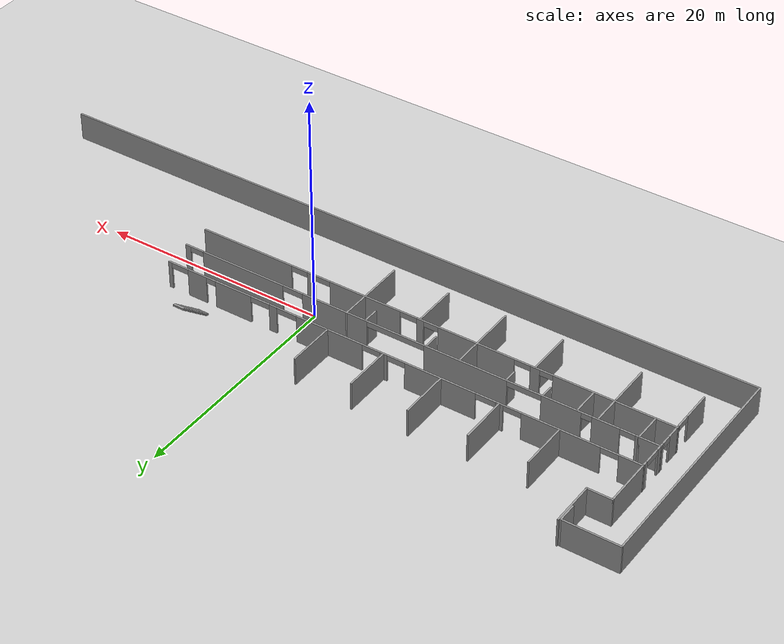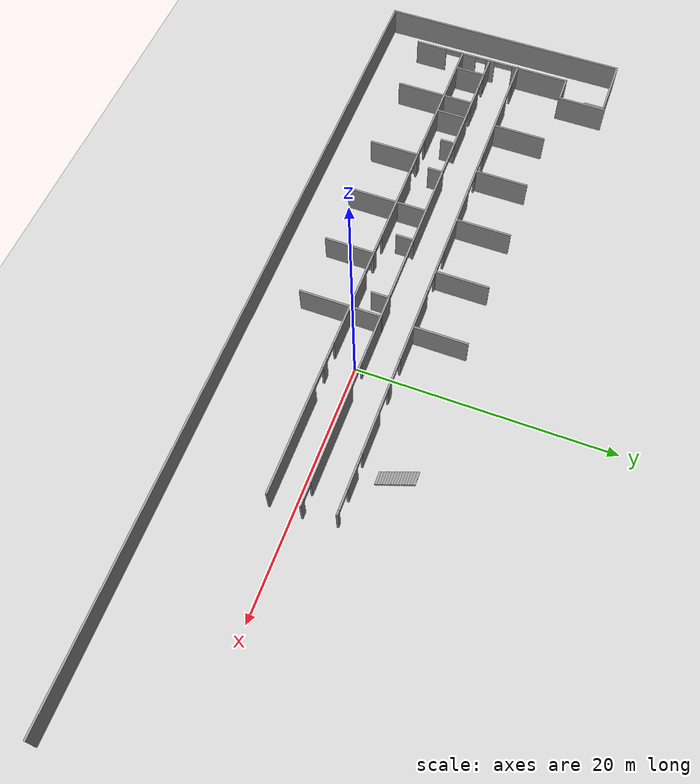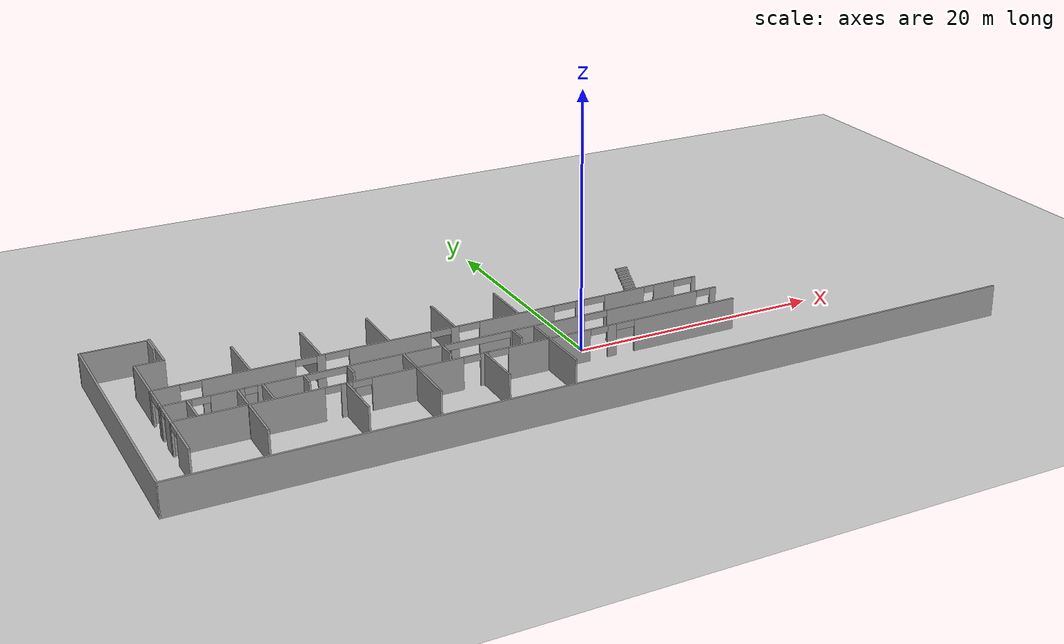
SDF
<sdf version="1.6">
 <world name="default">
  <model name="ground_plane">
   <static>1</static>
   <link name="link">
    <collision name="collision">
     <geometry><plane><normal>0 0 1</normal><size>100 100</size></plane></geometry>
     <surface><friction><ode><mu>100</mu><mu2>50</mu2></ode></friction></surface>
    </collision>
    <visual name="visual">
     <cast_shadows>0</cast_shadows>
     <geometry><plane><normal>0 0 1</normal><size>100 100</size></plane></geometry>
     <material>
      <script><uri>file://media/materials/scripts/gazebo.material</uri><name>Gazebo/Grey</name></script>
     </material>
    </visual>
   </link>
  </model>
  <model name="Se1_cut">
   <pose>-1.39677 1.1644 0 0 -0 0</pose>
   <link name="Stairs_0">
    <visual name="Stairs_0_Visual_0">
     <pose>8.95439 3.41699 0.083333 0 -0 -3.14159</pose>
     <geometry><box><size>1 0.196093 0.166667</size></box></geometry>
     <material>
      <script><uri>file://media/materials/scripts/gazebo.material</uri><name>Gazebo/Grey</name></script>
      <ambient>1 1 1 1</ambient>
     </material>
    </visual>
    <collision name="Stairs_0_Collision_0">
     <geometry><box><size>1 0.196093 0.166667</size></box></geometry>
     <pose>8.95439 3.41699 0.083333 0 -0 -3.14159</pose>
    </collision>
    <visual name="Stairs_0_Visual_1">
     <pose>8.95439 3.61308 0.25 0 -0 -3.14159</pose>
     <geometry><box><size>1 0.196093 0.166667</size></box></geometry>
     <material>
      <script><uri>file://media/materials/scripts/gazebo.material</uri><name>Gazebo/Grey</name></script>
      <ambient>1 1 1 1</ambient>
     </material>
    </visual>
    <collision name="Stairs_0_Collision_1">
     <geometry><box><size>1 0.196093 0.166667</size></box></geometry>
     <pose>8.95439 3.61308 0.25 0 -0 -3.14159</pose>
    </collision>
    <visual name="Stairs_0_Visual_2">
     <pose>8.95439 3.80917 0.416667 0 -0 -3.14159</pose>
     <geometry><box><size>1 0.196093 0.166667</size></box></geometry>
     <material>
      <script><uri>file://media/materials/scripts/gazebo.material</uri><name>Gazebo/Grey</name></script>
      <ambient>1 1 1 1</ambient>
     </material>
    </visual>
    <collision name="Stairs_0_Collision_2">
     <geometry><box><size>1 0.196093 0.166667</size></box></geometry>
     <pose>8.95439 3.80917 0.416667 0 -0 -3.14159</pose>
    </collision>
    <visual name="Stairs_0_Visual_3">
     <pose>8.95439 4.00526 0.583333 0 -0 -3.14159</pose>
     <geometry><box><size>1 0.196093 0.166667</size></box></geometry>
     <material>
      <script><uri>file://media/materials/scripts/gazebo.material</uri><name>Gazebo/Grey</name></script>
      <ambient>1 1 1 1</ambient>
     </material>
    </visual>
    <collision name="Stairs_0_Collision_3">
     <geometry><box><size>1 0.196093 0.166667</size></box></geometry>
     <pose>8.95439 4.00526 0.583333 0 -0 -3.14159</pose>
    </collision>
    <visual name="Stairs_0_Visual_4">
     <pose>8.95439 4.20136 0.75 0 -0 -3.14159</pose>
     <geometry><box><size>1 0.196093 0.166667</size></box></geometry>
     <material>
      <script><uri>file://media/materials/scripts/gazebo.material</uri><name>Gazebo/Grey</name></script>
      <ambient>1 1 1 1</ambient>
     </material>
    </visual>
    <collision name="Stairs_0_Collision_4">
     <geometry><box><size>1 0.196093 0.166667</size></box></geometry>
     <pose>8.95439 4.20136 0.75 0 -0 -3.14159</pose>
    </collision>
    <visual name="Stairs_0_Visual_5">
     <pose>8.95439 4.39745 0.916667 0 -0 -3.14159</pose>
     <geometry><box><size>1 0.196093 0.166667</size></box></geometry>
     <material>
      <script><uri>file://media/materials/scripts/gazebo.material</uri><name>Gazebo/Grey</name></script>
      <ambient>1 1 1 1</ambient>
     </material>
    </visual>
    <collision name="Stairs_0_Collision_5">
     <geometry><box><size>1 0.196093 0.166667</size></box></geometry>
     <pose>8.95439 4.39745 0.916667 0 -0 -3.14159</pose>
    </collision>
    <visual name="Stairs_0_Visual_6">
     <pose>8.95439 4.59354 1.08333 0 -0 -3.14159</pose>
     <geometry><box><size>1 0.196093 0.166667</size></box></geometry>
     <material>
      <script><uri>file://media/materials/scripts/gazebo.material</uri><name>Gazebo/Grey</name></script>
      <ambient>1 1 1 1</ambient>
     </material>
    </visual>
    <collision name="Stairs_0_Collision_6">
     <geometry><box><size>1 0.196093 0.166667</size></box></geometry>
     <pose>8.95439 4.59354 1.08333 0 -0 -3.14159</pose>
    </collision>
    <visual name="Stairs_0_Visual_7">
     <pose>8.95439 4.78964 1.25 0 -0 -3.14159</pose>
     <geometry><box><size>1 0.196093 0.166667</size></box></geometry>
     <material>
      <script><uri>file://media/materials/scripts/gazebo.material</uri><name>Gazebo/Grey</name></script>
      <ambient>1 1 1 1</ambient>
     </material>
    </visual>
    <collision name="Stairs_0_Collision_7">
     <geometry><box><size>1 0.196093 0.166667</size></box></geometry>
     <pose>8.95439 4.78964 1.25 0 -0 -3.14159</pose>
    </collision>
    <visual name="Stairs_0_Visual_8">
     <pose>8.95439 4.98573 1.41667 0 -0 -3.14159</pose>
     <geometry><box><size>1 0.196093 0.166667</size></box></geometry>
     <material>
      <script><uri>file://media/materials/scripts/gazebo.material</uri><name>Gazebo/Grey</name></script>
      <ambient>1 1 1 1</ambient>
     </material>
    </visual>
    <collision name="Stairs_0_Collision_8">
     <geometry><box><size>1 0.196093 0.166667</size></box></geometry>
     <pose>8.95439 4.98573 1.41667 0 -0 -3.14159</pose>
    </collision>
    <visual name="Stairs_0_Visual_9">
     <pose>8.95439 5.18182 1.58333 0 -0 -3.14159</pose>
     <geometry><box><size>1 0.196093 0.166667</size></box></geometry>
     <material>
      <script><uri>file://media/materials/scripts/gazebo.material</uri><name>Gazebo/Grey</name></script>
      <ambient>1 1 1 1</ambient>
     </material>
    </visual>
    <collision name="Stairs_0_Collision_9">
     <geometry><box><size>1 0.196093 0.166667</size></box></geometry>
     <pose>8.95439 5.18182 1.58333 0 -0 -3.14159</pose>
    </collision>
    <visual name="Stairs_0_Visual_10">
     <pose>8.95439 5.37792 1.75 0 -0 -3.14159</pose>
     <geometry><box><size>1 0.196093 0.166667</size></box></geometry>
     <material>
      <script><uri>file://media/materials/scripts/gazebo.material</uri><name>Gazebo/Grey</name></script>
      <ambient>1 1 1 1</ambient>
     </material>
    </visual>
    <collision name="Stairs_0_Collision_10">
     <geometry><box><size>1 0.196093 0.166667</size></box></geometry>
     <pose>8.95439 5.37792 1.75 0 -0 -3.14159</pose>
    </collision>
    <visual name="Stairs_0_Visual_11">
     <pose>8.95439 5.57401 1.91667 0 -0 -3.14159</pose>
     <geometry><box><size>1 0.196093 0.166667</size></box></geometry>
     <material>
      <script><uri>file://media/materials/scripts/gazebo.material</uri><name>Gazebo/Grey</name></script>
      <ambient>1 1 1 1</ambient>
     </material>
    </visual>
    <collision name="Stairs_0_Collision_11">
     <geometry><box><size>1 0.196093 0.166667</size></box></geometry>
     <pose>8.95439 5.57401 1.91667 0 -0 -3.14159</pose>
    </collision>
    <visual name="Stairs_0_Visual_12">
     <pose>8.95439 5.7701 2.08333 0 -0 -3.14159</pose>
     <geometry><box><size>1 0.196093 0.166667</size></box></geometry>
     <material>
      <script><uri>file://media/materials/scripts/gazebo.material</uri><name>Gazebo/Grey</name></script>
      <ambient>1 1 1 1</ambient>
     </material>
    </visual>
    <collision name="Stairs_0_Collision_12">
     <geometry><box><size>1 0.196093 0.166667</size></box></geometry>
     <pose>8.95439 5.7701 2.08333 0 -0 -3.14159</pose>
    </collision>
    <visual name="Stairs_0_Visual_13">
     <pose>8.95439 5.9662 2.25 0 -0 -3.14159</pose>
     <geometry><box><size>1 0.196093 0.166667</size></box></geometry>
     <material>
      <script><uri>file://media/materials/scripts/gazebo.material</uri><name>Gazebo/Grey</name></script>
      <ambient>1 1 1 1</ambient>
     </material>
    </visual>
    <collision name="Stairs_0_Collision_13">
     <geometry><box><size>1 0.196093 0.166667</size></box></geometry>
     <pose>8.95439 5.9662 2.25 0 -0 -3.14159</pose>
    </collision>
    <visual name="Stairs_0_Visual_14">
     <pose>8.95439 6.16229 2.41667 0 -0 -3.14159</pose>
     <geometry><box><size>1 0.196093 0.166667</size></box></geometry>
     <material>
      <script><uri>file://media/materials/scripts/gazebo.material</uri><name>Gazebo/Grey</name></script>
      <ambient>1 1 1 1</ambient>
     </material>
    </visual>
    <collision name="Stairs_0_Collision_14">
     <geometry><box><size>1 0.196093 0.166667</size></box></geometry>
     <pose>8.95439 6.16229 2.41667 0 -0 -3.14159</pose>
    </collision>
   </link>
   <link name="Wall_0">
    <collision name="Wall_0_Collision">
     <geometry><box><size>1.75 0.15 2.5</size></box></geometry>
     <pose>0 0 1.25 0 -0 0</pose>
    </collision>
    <visual name="Wall_0_Visual">
     <pose>0 0 1.25 0 -0 0</pose>
     <geometry><box><size>1.75 0.15 2.5</size></box></geometry>
     <material>
      <script><uri>file://media/materials/scripts/gazebo.material</uri><name>Gazebo/Grey</name></script>
      <ambient>1 1 1 1</ambient>
     </material>
    </visual>
    <pose>-27.7314 9.325 0 0 -0 1.5708</pose>
   </link>
   <link name="Wall_1">
    <collision name="Wall_1_Collision">
     <geometry><box><size>5 0.15 2.5</size></box></geometry>
     <pose>0 0 1.25 0 -0 0</pose>
    </collision>
    <visual name="Wall_1_Visual">
     <pose>0 0 1.25 0 -0 0</pose>
     <geometry><box><size>5 0.15 2.5</size></box></geometry>
     <material>
      <script><uri>file://media/materials/scripts/gazebo.material</uri><name>Gazebo/Grey</name></script>
      <ambient>1 1 1 1</ambient>
     </material>
    </visual>
    <pose>-30.1564 10.125 0 0 -0 3.14159</pose>
   </link>
   <link name="Wall_12">
    <pose>-8.15027 -2.91919 0 0 -0 0</pose>
    <visual name="Wall_12_Visual_0">
     <pose>-16.3333 0 1.25 0 -0 0</pose>
     <geometry><box><size>10.5834 0.15 2.5</size></box></geometry>
     <material>
      <script><uri>file://media/materials/scripts/gazebo.material</uri><name>Gazebo/Grey</name></script>
      <ambient>1 1 1 1</ambient>
     </material>
    </visual>
    <collision name="Wall_12_Collision_0">
     <geometry><box><size>10.5834 0.15 2.5</size></box></geometry>
     <pose>-16.3333 0 1.25 0 -0 0</pose>
    </collision>
    <visual name="Wall_12_Visual_1">
     <pose>-9.48534 0 1.25 0 -0 0</pose>
     <geometry><box><size>0.82277 0.15 2.5</size></box></geometry>
     <material>
      <script><uri>file://media/materials/scripts/gazebo.material</uri><name>Gazebo/Grey</name></script>
      <ambient>1 1 1 1</ambient>
     </material>
    </visual>
    <collision name="Wall_12_Collision_1">
     <geometry><box><size>0.82277 0.15 2.5</size></box></geometry>
     <pose>-9.48534 0 1.25 0 -0 0</pose>
    </collision>
    <visual name="Wall_12_Visual_2">
     <pose>-4.24018 0 1.25 0 -0 0</pose>
     <geometry><box><size>6.85313 0.15 2.5</size></box></geometry>
     <material>
      <script><uri>file://media/materials/scripts/gazebo.material</uri><name>Gazebo/Grey</name></script>
      <ambient>1 1 1 1</ambient>
     </material>
    </visual>
    <collision name="Wall_12_Collision_2">
     <geometry><box><size>6.85313 0.15 2.5</size></box></geometry>
     <pose>-4.24018 0 1.25 0 -0 0</pose>
    </collision>
    <visual name="Wall_12_Visual_3">
     <pose>0.816046 0 1.25 0 -0 0</pose>
     <geometry><box><size>0.62662 0.15 2.5</size></box></geometry>
     <material>
      <script><uri>file://media/materials/scripts/gazebo.material</uri><name>Gazebo/Grey</name></script>
      <ambient>1 1 1 1</ambient>
     </material>
    </visual>
    <collision name="Wall_12_Collision_3">
     <geometry><box><size>0.62662 0.15 2.5</size></box></geometry>
     <pose>0.816046 0 1.25 0 -0 0</pose>
    </collision>
    <visual name="Wall_12_Visual_4">
     <pose>5.98559 0 1.25 0 -0 0</pose>
     <geometry><box><size>6.61716 0.15 2.5</size></box></geometry>
     <material>
      <script><uri>file://media/materials/scripts/gazebo.material</uri><name>Gazebo/Grey</name></script>
      <ambient>1 1 1 1</ambient>
     </material>
    </visual>
    <collision name="Wall_12_Collision_4">
     <geometry><box><size>6.61716 0.15 2.5</size></box></geometry>
     <pose>5.98559 0 1.25 0 -0 0</pose>
    </collision>
    <visual name="Wall_12_Visual_5">
     <pose>11.0915 0 1.25 0 -0 0</pose>
     <geometry><box><size>0.730708 0.15 2.5</size></box></geometry>
     <material>
      <script><uri>file://media/materials/scripts/gazebo.material</uri><name>Gazebo/Grey</name></script>
      <ambient>1 1 1 1</ambient>
     </material>
    </visual>
    <collision name="Wall_12_Collision_5">
     <geometry><box><size>0.730708 0.15 2.5</size></box></geometry>
     <pose>11.0915 0 1.25 0 -0 0</pose>
    </collision>
    <visual name="Wall_12_Visual_6">
     <pose>17.3032 0 1.25 0 -0 0</pose>
     <geometry><box><size>8.64359 0.15 2.5</size></box></geometry>
     <material>
      <script><uri>file://media/materials/scripts/gazebo.material</uri><name>Gazebo/Grey</name></script>
      <ambient>1 1 1 1</ambient>
     </material>
    </visual>
    <collision name="Wall_12_Collision_6">
     <geometry><box><size>8.64359 0.15 2.5</size></box></geometry>
     <pose>17.3032 0 1.25 0 -0 0</pose>
    </collision>
    <visual name="Wall_12_Visual_7">
     <pose>-10.4692 0 2.25 0 -0 0</pose>
     <geometry><box><size>1.14486 0.15 0.5</size></box></geometry>
     <material>
      <script><uri>file://media/materials/scripts/gazebo.material</uri><name>Gazebo/Grey</name></script>
      <ambient>1 1 1 1</ambient>
     </material>
    </visual>
    <collision name="Wall_12_Collision_7">
     <geometry><box><size>1.14486 0.15 0.5</size></box></geometry>
     <pose>-10.4692 0 2.25 0 -0 0</pose>
    </collision>
    <visual name="Wall_12_Visual_8">
     <pose>-8.37035 0 2.25 0 -0 0</pose>
     <geometry><box><size>1.40721 0.15 0.5</size></box></geometry>
     <material>
      <script><uri>file://media/materials/scripts/gazebo.material</uri><name>Gazebo/Grey</name></script>
      <ambient>1 1 1 1</ambient>
     </material>
    </visual>
    <collision name="Wall_12_Collision_8">
     <geometry><box><size>1.40721 0.15 0.5</size></box></geometry>
     <pose>-8.37035 0 2.25 0 -0 0</pose>
    </collision>
    <visual name="Wall_12_Visual_9">
     <pose>-0.155439 0 2.25 0 -0 0</pose>
     <geometry><box><size>1.31635 0.15 0.5</size></box></geometry>
     <material>
      <script><uri>file://media/materials/scripts/gazebo.material</uri><name>Gazebo/Grey</name></script>
      <ambient>1 1 1 1</ambient>
     </material>
    </visual>
    <collision name="Wall_12_Collision_9">
     <geometry><box><size>1.31635 0.15 0.5</size></box></geometry>
     <pose>-0.155439 0 2.25 0 -0 0</pose>
    </collision>
    <visual name="Wall_12_Visual_10">
     <pose>1.90318 0 2.25 0 -0 0</pose>
     <geometry><box><size>1.54766 0.15 0.5</size></box></geometry>
     <material>
      <script><uri>file://media/materials/scripts/gazebo.material</uri><name>Gazebo/Grey</name></script>
      <ambient>1 1 1 1</ambient>
     </material>
    </visual>
    <collision name="Wall_12_Collision_10">
     <geometry><box><size>1.54766 0.15 0.5</size></box></geometry>
     <pose>1.90318 0 2.25 0 -0 0</pose>
    </collision>
    <visual name="Wall_12_Visual_11">
     <pose>10.0102 0 2.25 0 -0 0</pose>
     <geometry><box><size>1.432 0.15 0.5</size></box></geometry>
     <material>
      <script><uri>file://media/materials/scripts/gazebo.material</uri><name>Gazebo/Grey</name></script>
      <ambient>1 1 1 1</ambient>
     </material>
    </visual>
    <collision name="Wall_12_Collision_11">
     <geometry><box><size>1.432 0.15 0.5</size></box></geometry>
     <pose>10.0102 0 2.25 0 -0 0</pose>
    </collision>
    <visual name="Wall_12_Visual_12">
     <pose>12.2191 0 2.25 0 -0 0</pose>
     <geometry><box><size>1.52453 0.15 0.5</size></box></geometry>
     <material>
      <script><uri>file://media/materials/scripts/gazebo.material</uri><name>Gazebo/Grey</name></script>
      <ambient>1 1 1 1</ambient>
     </material>
    </visual>
    <collision name="Wall_12_Collision_12">
     <geometry><box><size>1.52453 0.15 0.5</size></box></geometry>
     <pose>12.2191 0 2.25 0 -0 0</pose>
    </collision>
   </link>
   <link name="Wall_15">
    <pose>-8.15027 -0.45807 0 0 -0 0</pose>
    <visual name="Wall_15_Visual_0">
     <pose>-20.5479 0 1.25 0 -0 0</pose>
     <geometry><box><size>2.15424 0.15 2.5</size></box></geometry>
     <material>
      <script><uri>file://media/materials/scripts/gazebo.material</uri><name>Gazebo/Grey</name></script>
      <ambient>1 1 1 1</ambient>
     </material>
    </visual>
    <collision name="Wall_15_Collision_0">
     <geometry><box><size>2.15424 0.15 2.5</size></box></geometry>
     <pose>-20.5479 0 1.25 0 -0 0</pose>
    </collision>
    <visual name="Wall_15_Visual_1">
     <pose>-17.0143 0 1.25 0 -0 0</pose>
     <geometry><box><size>2.34337 0.15 2.5</size></box></geometry>
     <material>
      <script><uri>file://media/materials/scripts/gazebo.material</uri><name>Gazebo/Grey</name></script>
      <ambient>1 1 1 1</ambient>
     </material>
    </visual>
    <collision name="Wall_15_Collision_1">
     <geometry><box><size>2.34337 0.15 2.5</size></box></geometry>
     <pose>-17.0143 0 1.25 0 -0 0</pose>
    </collision>
    <visual name="Wall_15_Visual_2">
     <pose>-13.2326 0 1.25 0 -0 0</pose>
     <geometry><box><size>3.42005 0.15 2.5</size></box></geometry>
     <material>
      <script><uri>file://media/materials/scripts/gazebo.material</uri><name>Gazebo/Grey</name></script>
      <ambient>1 1 1 1</ambient>
     </material>
    </visual>
    <collision name="Wall_15_Collision_2">
     <geometry><box><size>3.42005 0.15 2.5</size></box></geometry>
     <pose>-13.2326 0 1.25 0 -0 0</pose>
    </collision>
    <visual name="Wall_15_Visual_3">
     <pose>-4.87122 0 1.25 0 -0 0</pose>
     <geometry><box><size>7.37503 0.15 2.5</size></box></geometry>
     <material>
      <script><uri>file://media/materials/scripts/gazebo.material</uri><name>Gazebo/Grey</name></script>
      <ambient>1 1 1 1</ambient>
     </material>
    </visual>
    <collision name="Wall_15_Collision_3">
     <geometry><box><size>7.37503 0.15 2.5</size></box></geometry>
     <pose>-4.87122 0 1.25 0 -0 0</pose>
    </collision>
    <visual name="Wall_15_Visual_4">
     <pose>7.10743 0 1.25 0 -0 0</pose>
     <geometry><box><size>6.08516 0.15 2.5</size></box></geometry>
     <material>
      <script><uri>file://media/materials/scripts/gazebo.material</uri><name>Gazebo/Grey</name></script>
      <ambient>1 1 1 1</ambient>
     </material>
    </visual>
    <collision name="Wall_15_Collision_4">
     <geometry><box><size>6.08516 0.15 2.5</size></box></geometry>
     <pose>7.10743 0 1.25 0 -0 0</pose>
    </collision>
    <visual name="Wall_15_Visual_5">
     <pose>15.9605 0 1.25 0 -0 0</pose>
     <geometry><box><size>7.83181 0.15 2.5</size></box></geometry>
     <material>
      <script><uri>file://media/materials/scripts/gazebo.material</uri><name>Gazebo/Grey</name></script>
      <ambient>1 1 1 1</ambient>
     </material>
    </visual>
    <collision name="Wall_15_Collision_5">
     <geometry><box><size>7.83181 0.15 2.5</size></box></geometry>
     <pose>15.9605 0 1.25 0 -0 0</pose>
    </collision>
    <visual name="Wall_15_Visual_6">
     <pose>21.3626 0 1.25 0 -0 0</pose>
     <geometry><box><size>0.524744 0.15 2.5</size></box></geometry>
     <material>
      <script><uri>file://media/materials/scripts/gazebo.material</uri><name>Gazebo/Grey</name></script>
      <ambient>1 1 1 1</ambient>
     </material>
    </visual>
    <collision name="Wall_15_Collision_6">
     <geometry><box><size>0.524744 0.15 2.5</size></box></geometry>
     <pose>21.3626 0 1.25 0 -0 0</pose>
    </collision>
    <visual name="Wall_15_Visual_7">
     <pose>-18.8284 0 2.25 0 -0 0</pose>
     <geometry><box><size>1.28478 0.15 0.5</size></box></geometry>
     <material>
      <script><uri>file://media/materials/scripts/gazebo.material</uri><name>Gazebo/Grey</name></script>
      <ambient>1 1 1 1</ambient>
     </material>
    </visual>
    <collision name="Wall_15_Collision_7">
     <geometry><box><size>1.28478 0.15 0.5</size></box></geometry>
     <pose>-18.8284 0 2.25 0 -0 0</pose>
    </collision>
    <visual name="Wall_15_Visual_8">
     <pose>-15.3926 0 2.25 0 -0 0</pose>
     <geometry><box><size>0.9 0.15 0.5</size></box></geometry>
     <material>
      <script><uri>file://media/materials/scripts/gazebo.material</uri><name>Gazebo/Grey</name></script>
      <ambient>1 1 1 1</ambient>
     </material>
    </visual>
    <collision name="Wall_15_Collision_8">
     <geometry><box><size>0.9 0.15 0.5</size></box></geometry>
     <pose>-15.3926 0 2.25 0 -0 0</pose>
    </collision>
    <visual name="Wall_15_Visual_9">
     <pose>-10.0406 0 2.25 0 -0 0</pose>
     <geometry><box><size>2.96383 0.15 0.5</size></box></geometry>
     <material>
      <script><uri>file://media/materials/scripts/gazebo.material</uri><name>Gazebo/Grey</name></script>
      <ambient>1 1 1 1</ambient>
     </material>
    </visual>
    <collision name="Wall_15_Collision_9">
     <geometry><box><size>2.96383 0.15 0.5</size></box></geometry>
     <pose>-10.0406 0 2.25 0 -0 0</pose>
    </collision>
    <visual name="Wall_15_Visual_10">
     <pose>1.44057 0 2.25 0 -0 0</pose>
     <geometry><box><size>5.24855 0.15 0.5</size></box></geometry>
     <material>
      <script><uri>file://media/materials/scripts/gazebo.material</uri><name>Gazebo/Grey</name></script>
      <ambient>1 1 1 1</ambient>
     </material>
    </visual>
    <collision name="Wall_15_Collision_10">
     <geometry><box><size>5.24855 0.15 0.5</size></box></geometry>
     <pose>1.44057 0 2.25 0 -0 0</pose>
    </collision>
    <visual name="Wall_15_Visual_11">
     <pose>11.0973 0 2.25 0 -0 0</pose>
     <geometry><box><size>1.89462 0.15 0.5</size></box></geometry>
     <material>
      <script><uri>file://media/materials/scripts/gazebo.material</uri><name>Gazebo/Grey</name></script>
      <ambient>1 1 1 1</ambient>
     </material>
    </visual>
    <collision name="Wall_15_Collision_11">
     <geometry><box><size>1.89462 0.15 0.5</size></box></geometry>
     <pose>11.0973 0 2.25 0 -0 0</pose>
    </collision>
    <visual name="Wall_15_Visual_12">
     <pose>20.4883 0 2.25 0 -0 0</pose>
     <geometry><box><size>1.22383 0.15 0.5</size></box></geometry>
     <material>
      <script><uri>file://media/materials/scripts/gazebo.material</uri><name>Gazebo/Grey</name></script>
      <ambient>1 1 1 1</ambient>
     </material>
    </visual>
    <collision name="Wall_15_Collision_12">
     <geometry><box><size>1.22383 0.15 0.5</size></box></geometry>
     <pose>20.4883 0 2.25 0 -0 0</pose>
    </collision>
   </link>
   <link name="Wall_18">
    <collision name="Wall_18_Collision">
     <geometry><box><size>2.5 0.15 2.5</size></box></geometry>
     <pose>0 0 1.25 0 -0 0</pose>
    </collision>
    <visual name="Wall_18_Visual">
     <pose>0 0 1.25 0 -0 0</pose>
     <geometry><box><size>2.5 0.15 2.5</size></box></geometry>
     <material>
      <script><uri>file://media/materials/scripts/gazebo.material</uri><name>Gazebo/Grey</name></script>
      <ambient>1 1 1 1</ambient>
     </material>
    </visual>
    <pose>-27.916 -1.63307 0 0 0 -1.5708</pose>
   </link>
   <link name="Wall_2">
    <collision name="Wall_2_Collision">
     <geometry><box><size>20.5 0.15 2.5</size></box></geometry>
     <pose>0 0 1.25 0 -0 0</pose>
    </collision>
    <visual name="Wall_2_Visual">
     <pose>0 0 1.25 0 -0 0</pose>
     <geometry><box><size>20.5 0.15 2.5</size></box></geometry>
     <material>
      <script><uri>file://media/materials/scripts/gazebo.material</uri><name>Gazebo/Grey</name></script>
      <ambient>1 1 1 1</ambient>
     </material>
    </visual>
    <pose>-32.5814 -0.05 0 0 0 -1.5708</pose>
   </link>
   <link name="Wall_20">
    <collision name="Wall_20_Collision">
     <geometry><box><size>2.57604 0.15 2.5</size></box></geometry>
     <pose>0 0 1.25 0 -0 0</pose>
    </collision>
    <visual name="Wall_20_Visual">
     <pose>0 0 1.25 0 -0 0</pose>
     <geometry><box><size>2.57604 0.15 2.5</size></box></geometry>
     <material>
      <script><uri>file://media/materials/scripts/gazebo.material</uri><name>Gazebo/Grey</name></script>
      <ambient>1 1 1 1</ambient>
     </material>
    </visual>
    <pose>-24.4704 -1.79415 0 0 0 -1.5708</pose>
   </link>
   <link name="Wall_23">
    <collision name="Wall_23_Collision">
     <geometry><box><size>2.5 0.15 2.5</size></box></geometry>
     <pose>0 0 1.25 0 -0 0</pose>
    </collision>
    <visual name="Wall_23_Visual">
     <pose>0 0 1.25 0 -0 0</pose>
     <geometry><box><size>2.5 0.15 2.5</size></box></geometry>
     <material>
      <script><uri>file://media/materials/scripts/gazebo.material</uri><name>Gazebo/Grey</name></script>
      <ambient>1 1 1 1</ambient>
     </material>
    </visual>
    <pose>-22.711 -1.63352 0 0 0 -1.5708</pose>
   </link>
   <link name="Wall_25">
    <collision name="Wall_25_Collision">
     <geometry><box><size>1.25 0.15 2.5</size></box></geometry>
     <pose>0 0 1.25 0 -0 0</pose>
    </collision>
    <visual name="Wall_25_Visual">
     <pose>0 0 1.25 0 -0 0</pose>
     <geometry><box><size>1.25 0.15 2.5</size></box></geometry>
     <material>
      <script><uri>file://media/materials/scripts/gazebo.material</uri><name>Gazebo/Grey</name></script>
      <ambient>1 1 1 1</ambient>
     </material>
    </visual>
    <pose>-19.781 -1.01852 0 0 0 -1.5708</pose>
   </link>
   <link name="Wall_27">
    <collision name="Wall_27_Collision">
     <geometry><box><size>1.25 0.15 2.5</size></box></geometry>
     <pose>0 0 1.25 0 -0 0</pose>
    </collision>
    <visual name="Wall_27_Visual">
     <pose>0 0 1.25 0 -0 0</pose>
     <geometry><box><size>1.25 0.15 2.5</size></box></geometry>
     <material>
      <script><uri>file://media/materials/scripts/gazebo.material</uri><name>Gazebo/Grey</name></script>
      <ambient>1 1 1 1</ambient>
     </material>
    </visual>
    <pose>-16.601 -1.02852 0 0 0 -1.5708</pose>
   </link>
   <link name="Wall_29">
    <collision name="Wall_29_Collision">
     <geometry><box><size>2.5 0.15 2.5</size></box></geometry>
     <pose>0 0 1.25 0 -0 0</pose>
    </collision>
    <visual name="Wall_29_Visual">
     <pose>0 0 1.25 0 -0 0</pose>
     <geometry><box><size>2.5 0.15 2.5</size></box></geometry>
     <material>
      <script><uri>file://media/materials/scripts/gazebo.material</uri><name>Gazebo/Grey</name></script>
      <ambient>1 1 1 1</ambient>
     </material>
    </visual>
    <pose>-12.471 -1.66352 0 0 0 -1.5708</pose>
   </link>
   <link name="Wall_3">
    <collision name="Wall_3_Collision">
     <geometry><box><size>65.25 0.15 2.5</size></box></geometry>
     <pose>0 0 1.25 0 -0 0</pose>
    </collision>
    <visual name="Wall_3_Visual">
     <pose>0 0 1.25 0 -0 0</pose>
     <geometry><box><size>65.25 0.15 2.5</size></box></geometry>
     <material>
      <script><uri>file://media/materials/scripts/gazebo.material</uri><name>Gazebo/Grey</name></script>
      <ambient>1 1 1 1</ambient>
     </material>
    </visual>
    <pose>-0.031375 -10.225 0 0 -0 0</pose>
   </link>
   <link name="Wall_31">
    <collision name="Wall_31_Collision">
     <geometry><box><size>1.5 0.15 2.5</size></box></geometry>
     <pose>0 0 1.25 0 -0 0</pose>
    </collision>
    <visual name="Wall_31_Visual">
     <pose>0 0 1.25 0 -0 0</pose>
     <geometry><box><size>1.5 0.15 2.5</size></box></geometry>
     <material>
      <script><uri>file://media/materials/scripts/gazebo.material</uri><name>Gazebo/Grey</name></script>
      <ambient>1 1 1 1</ambient>
     </material>
    </visual>
    <pose>-9.481 -1.13352 0 0 0 -1.5708</pose>
   </link>
   <link name="Wall_33">
    <collision name="Wall_33_Collision">
     <geometry><box><size>1.5 0.15 2.5</size></box></geometry>
     <pose>0 0 1.25 0 -0 0</pose>
    </collision>
    <visual name="Wall_33_Visual">
     <pose>0 0 1.25 0 -0 0</pose>
     <geometry><box><size>1.5 0.15 2.5</size></box></geometry>
     <material>
      <script><uri>file://media/materials/scripts/gazebo.material</uri><name>Gazebo/Grey</name></script>
      <ambient>1 1 1 1</ambient>
     </material>
    </visual>
    <pose>-3.911 -1.13352 0 0 0 -1.5708</pose>
   </link>
   <link name="Wall_35">
    <collision name="Wall_35_Collision">
     <geometry><box><size>2.5 0.15 2.5</size></box></geometry>
     <pose>0 0 1.25 0 -0 0</pose>
    </collision>
    <visual name="Wall_35_Visual">
     <pose>0 0 1.25 0 -0 0</pose>
     <geometry><box><size>2.5 0.15 2.5</size></box></geometry>
     <material>
      <script><uri>file://media/materials/scripts/gazebo.material</uri><name>Gazebo/Grey</name></script>
      <ambient>1 1 1 1</ambient>
     </material>
    </visual>
    <pose>-2.181 -1.62352 0 0 0 -1.5708</pose>
   </link>
   <link name="Wall_46">
    <pose>-8.2779 2.06374 0 0 -0 0</pose>
    <visual name="Wall_46_Visual_0">
     <pose>-20.462 0 1.25 0 -0 0</pose>
     <geometry><box><size>2.07596 0.15 2.5</size></box></geometry>
     <material>
      <script><uri>file://media/materials/scripts/gazebo.material</uri><name>Gazebo/Grey</name></script>
      <ambient>1 1 1 1</ambient>
     </material>
    </visual>
    <collision name="Wall_46_Collision_0">
     <geometry><box><size>2.07596 0.15 2.5</size></box></geometry>
     <pose>-20.462 0 1.25 0 -0 0</pose>
    </collision>
    <visual name="Wall_46_Visual_1">
     <pose>-14.5766 0 1.25 0 -0 0</pose>
     <geometry><box><size>6.67122 0.15 2.5</size></box></geometry>
     <material>
      <script><uri>file://media/materials/scripts/gazebo.material</uri><name>Gazebo/Grey</name></script>
      <ambient>1 1 1 1</ambient>
     </material>
    </visual>
    <collision name="Wall_46_Collision_1">
     <geometry><box><size>6.67122 0.15 2.5</size></box></geometry>
     <pose>-14.5766 0 1.25 0 -0 0</pose>
    </collision>
    <visual name="Wall_46_Visual_2">
     <pose>-9.36125 0 1.25 0 -0 0</pose>
     <geometry><box><size>0.629513 0.15 2.5</size></box></geometry>
     <material>
      <script><uri>file://media/materials/scripts/gazebo.material</uri><name>Gazebo/Grey</name></script>
      <ambient>1 1 1 1</ambient>
     </material>
    </visual>
    <collision name="Wall_46_Collision_2">
     <geometry><box><size>0.629513 0.15 2.5</size></box></geometry>
     <pose>-9.36125 0 1.25 0 -0 0</pose>
    </collision>
    <visual name="Wall_46_Visual_3">
     <pose>-4.12766 0 1.25 0 -0 0</pose>
     <geometry><box><size>6.28205 0.15 2.5</size></box></geometry>
     <material>
      <script><uri>file://media/materials/scripts/gazebo.material</uri><name>Gazebo/Grey</name></script>
      <ambient>1 1 1 1</ambient>
     </material>
    </visual>
    <collision name="Wall_46_Collision_3">
     <geometry><box><size>6.28205 0.15 2.5</size></box></geometry>
     <pose>-4.12766 0 1.25 0 -0 0</pose>
    </collision>
    <visual name="Wall_46_Visual_4">
     <pose>0.926374 0 1.25 0 -0 0</pose>
     <geometry><box><size>0.642812 0.15 2.5</size></box></geometry>
     <material>
      <script><uri>file://media/materials/scripts/gazebo.material</uri><name>Gazebo/Grey</name></script>
      <ambient>1 1 1 1</ambient>
     </material>
    </visual>
    <collision name="Wall_46_Collision_4">
     <geometry><box><size>0.642812 0.15 2.5</size></box></geometry>
     <pose>0.926374 0 1.25 0 -0 0</pose>
    </collision>
    <visual name="Wall_46_Visual_5">
     <pose>5.96711 0 1.25 0 -0 0</pose>
     <geometry><box><size>6.14905 0.15 2.5</size></box></geometry>
     <material>
      <script><uri>file://media/materials/scripts/gazebo.material</uri><name>Gazebo/Grey</name></script>
      <ambient>1 1 1 1</ambient>
     </material>
    </visual>
    <collision name="Wall_46_Collision_5">
     <geometry><box><size>6.14905 0.15 2.5</size></box></geometry>
     <pose>5.96711 0 1.25 0 -0 0</pose>
    </collision>
    <visual name="Wall_46_Visual_6">
     <pose>11.2606 0 1.25 0 -0 0</pose>
     <geometry><box><size>0.722612 0.15 2.5</size></box></geometry>
     <material>
      <script><uri>file://media/materials/scripts/gazebo.material</uri><name>Gazebo/Grey</name></script>
      <ambient>1 1 1 1</ambient>
     </material>
    </visual>
    <collision name="Wall_46_Collision_6">
     <geometry><box><size>0.722612 0.15 2.5</size></box></geometry>
     <pose>11.2606 0 1.25 0 -0 0</pose>
    </collision>
    <visual name="Wall_46_Visual_7">
     <pose>15.1043 0 1.25 0 -0 0</pose>
     <geometry><box><size>3.46243 0.15 2.5</size></box></geometry>
     <material>
      <script><uri>file://media/materials/scripts/gazebo.material</uri><name>Gazebo/Grey</name></script>
      <ambient>1 1 1 1</ambient>
     </material>
    </visual>
    <collision name="Wall_46_Collision_7">
     <geometry><box><size>3.46243 0.15 2.5</size></box></geometry>
     <pose>15.1043 0 1.25 0 -0 0</pose>
    </collision>
    <visual name="Wall_46_Visual_8">
     <pose>18.6421 0 1.25 0 -0 0</pose>
     <geometry><box><size>1.81322 0.15 2.5</size></box></geometry>
     <material>
      <script><uri>file://media/materials/scripts/gazebo.material</uri><name>Gazebo/Grey</name></script>
      <ambient>1 1 1 1</ambient>
     </material>
    </visual>
    <collision name="Wall_46_Collision_8">
     <geometry><box><size>1.81322 0.15 2.5</size></box></geometry>
     <pose>18.6421 0 1.25 0 -0 0</pose>
    </collision>
    <visual name="Wall_46_Visual_9">
     <pose>21.3202 0 1.25 0 -0 0</pose>
     <geometry><box><size>0.359679 0.15 2.5</size></box></geometry>
     <material>
      <script><uri>file://media/materials/scripts/gazebo.material</uri><name>Gazebo/Grey</name></script>
      <ambient>1 1 1 1</ambient>
     </material>
    </visual>
    <collision name="Wall_46_Collision_9">
     <geometry><box><size>0.359679 0.15 2.5</size></box></geometry>
     <pose>21.3202 0 1.25 0 -0 0</pose>
    </collision>
    <visual name="Wall_46_Visual_10">
     <pose>-18.6681 0 2.25 0 -0 0</pose>
     <geometry><box><size>1.51181 0.15 0.5</size></box></geometry>
     <material>
      <script><uri>file://media/materials/scripts/gazebo.material</uri><name>Gazebo/Grey</name></script>
      <ambient>1 1 1 1</ambient>
     </material>
    </visual>
    <collision name="Wall_46_Collision_10">
     <geometry><box><size>1.51181 0.15 0.5</size></box></geometry>
     <pose>-18.6681 0 2.25 0 -0 0</pose>
    </collision>
    <visual name="Wall_46_Visual_11">
     <pose>-10.4585 0 2.25 0 -0 0</pose>
     <geometry><box><size>1.565 0.15 0.5</size></box></geometry>
     <material>
      <script><uri>file://media/materials/scripts/gazebo.material</uri><name>Gazebo/Grey</name></script>
      <ambient>1 1 1 1</ambient>
     </material>
    </visual>
    <collision name="Wall_46_Collision_11">
     <geometry><box><size>1.565 0.15 0.5</size></box></geometry>
     <pose>-10.4585 0 2.25 0 -0 0</pose>
    </collision>
    <visual name="Wall_46_Visual_12">
     <pose>-8.15759 0 2.25 0 -0 0</pose>
     <geometry><box><size>1.77781 0.15 0.5</size></box></geometry>
     <material>
      <script><uri>file://media/materials/scripts/gazebo.material</uri><name>Gazebo/Grey</name></script>
      <ambient>1 1 1 1</ambient>
     </material>
    </visual>
    <collision name="Wall_46_Collision_12">
     <geometry><box><size>1.77781 0.15 0.5</size></box></geometry>
     <pose>-8.15759 0 2.25 0 -0 0</pose>
    </collision>
    <visual name="Wall_46_Visual_13">
     <pose>-0.190835 0 2.25 0 -0 0</pose>
     <geometry><box><size>1.5916 0.15 0.5</size></box></geometry>
     <material>
      <script><uri>file://media/materials/scripts/gazebo.material</uri><name>Gazebo/Grey</name></script>
      <ambient>1 1 1 1</ambient>
     </material>
    </visual>
    <collision name="Wall_46_Collision_13">
     <geometry><box><size>1.5916 0.15 0.5</size></box></geometry>
     <pose>-0.190835 0 2.25 0 -0 0</pose>
    </collision>
    <visual name="Wall_46_Visual_14">
     <pose>2.07018 0 2.25 0 -0 0</pose>
     <geometry><box><size>1.64481 0.15 0.5</size></box></geometry>
     <material>
      <script><uri>file://media/materials/scripts/gazebo.material</uri><name>Gazebo/Grey</name></script>
      <ambient>1 1 1 1</ambient>
     </material>
    </visual>
    <collision name="Wall_46_Collision_14">
     <geometry><box><size>1.64481 0.15 0.5</size></box></geometry>
     <pose>2.07018 0 2.25 0 -0 0</pose>
    </collision>
    <visual name="Wall_46_Visual_15">
     <pose>9.97044 0 2.25 0 -0 0</pose>
     <geometry><box><size>1.85761 0.15 0.5</size></box></geometry>
     <material>
      <script><uri>file://media/materials/scripts/gazebo.material</uri><name>Gazebo/Grey</name></script>
      <ambient>1 1 1 1</ambient>
     </material>
    </visual>
    <collision name="Wall_46_Collision_15">
     <geometry><box><size>1.85761 0.15 0.5</size></box></geometry>
     <pose>9.97044 0 2.25 0 -0 0</pose>
    </collision>
    <visual name="Wall_46_Visual_16">
     <pose>12.4975 0 2.25 0 -0 0</pose>
     <geometry><box><size>1.75121 0.15 0.5</size></box></geometry>
     <material>
      <script><uri>file://media/materials/scripts/gazebo.material</uri><name>Gazebo/Grey</name></script>
      <ambient>1 1 1 1</ambient>
     </material>
    </visual>
    <collision name="Wall_46_Collision_16">
     <geometry><box><size>1.75121 0.15 0.5</size></box></geometry>
     <pose>12.4975 0 2.25 0 -0 0</pose>
    </collision>
    <visual name="Wall_46_Visual_17">
     <pose>17.2855 0 2.25 0 -0 0</pose>
     <geometry><box><size>0.9 0.15 0.5</size></box></geometry>
     <material>
      <script><uri>file://media/materials/scripts/gazebo.material</uri><name>Gazebo/Grey</name></script>
      <ambient>1 1 1 1</ambient>
     </material>
    </visual>
    <collision name="Wall_46_Collision_17">
     <geometry><box><size>0.9 0.15 0.5</size></box></geometry>
     <pose>17.2855 0 2.25 0 -0 0</pose>
    </collision>
    <visual name="Wall_46_Visual_18">
     <pose>20.3445 0 2.25 0 -0 0</pose>
     <geometry><box><size>1.5916 0.15 0.5</size></box></geometry>
     <material>
      <script><uri>file://media/materials/scripts/gazebo.material</uri><name>Gazebo/Grey</name></script>
      <ambient>1 1 1 1</ambient>
     </material>
    </visual>
    <collision name="Wall_46_Collision_18">
     <geometry><box><size>1.5916 0.15 0.5</size></box></geometry>
     <pose>20.3445 0 2.25 0 -0 0</pose>
    </collision>
   </link>
   <link name="Wall_49">
    <collision name="Wall_49_Collision">
     <geometry><box><size>4.25 0.15 2.5</size></box></geometry>
     <pose>0 0 1.25 0 -0 0</pose>
    </collision>
    <visual name="Wall_49_Visual">
     <pose>0 0 1.25 0 -0 0</pose>
     <geometry><box><size>4.25 0.15 2.5</size></box></geometry>
     <material>
      <script><uri>file://media/materials/scripts/gazebo.material</uri><name>Gazebo/Grey</name></script>
      <ambient>1 1 1 1</ambient>
     </material>
    </visual>
    <pose>-22.7583 4.23959 0 0 0 -1.5708</pose>
   </link>
   <link name="Wall_51">
    <collision name="Wall_51_Collision">
     <geometry><box><size>4.25 0.15 2.5</size></box></geometry>
     <pose>0 0 1.25 0 -0 0</pose>
    </collision>
    <visual name="Wall_51_Visual">
     <pose>0 0 1.25 0 -0 0</pose>
     <geometry><box><size>4.25 0.15 2.5</size></box></geometry>
     <material>
      <script><uri>file://media/materials/scripts/gazebo.material</uri><name>Gazebo/Grey</name></script>
      <ambient>1 1 1 1</ambient>
     </material>
    </visual>
    <pose>-17.6222 4.24038 0 0 0 -1.5708</pose>
   </link>
   <link name="Wall_53">
    <collision name="Wall_53_Collision">
     <geometry><box><size>4.5 0.15 2.5</size></box></geometry>
     <pose>0 0 1.25 0 -0 0</pose>
    </collision>
    <visual name="Wall_53_Visual">
     <pose>0 0 1.25 0 -0 0</pose>
     <geometry><box><size>4.5 0.15 2.5</size></box></geometry>
     <material>
      <script><uri>file://media/materials/scripts/gazebo.material</uri><name>Gazebo/Grey</name></script>
      <ambient>1 1 1 1</ambient>
     </material>
    </visual>
    <pose>-12.4852 4.25279 0 0 0 -1.5708</pose>
   </link>
   <link name="Wall_55">
    <collision name="Wall_55_Collision">
     <geometry><box><size>4.25 0.15 2.5</size></box></geometry>
     <pose>0 0 1.25 0 -0 0</pose>
    </collision>
    <visual name="Wall_55_Visual">
     <pose>0 0 1.25 0 -0 0</pose>
     <geometry><box><size>4.25 0.15 2.5</size></box></geometry>
     <material>
      <script><uri>file://media/materials/scripts/gazebo.material</uri><name>Gazebo/Grey</name></script>
      <ambient>1 1 1 1</ambient>
     </material>
    </visual>
    <pose>-7.3248 4.21819 0 0 0 -1.5708</pose>
   </link>
   <link name="Wall_57">
    <collision name="Wall_57_Collision">
     <geometry><box><size>4.25 0.15 2.5</size></box></geometry>
     <pose>0 0 1.25 0 -0 0</pose>
    </collision>
    <visual name="Wall_57_Visual">
     <pose>0 0 1.25 0 -0 0</pose>
     <geometry><box><size>4.25 0.15 2.5</size></box></geometry>
     <material>
      <script><uri>file://media/materials/scripts/gazebo.material</uri><name>Gazebo/Grey</name></script>
      <ambient>1 1 1 1</ambient>
     </material>
    </visual>
    <pose>-2.16437 4.21819 0 0 0 -1.5708</pose>
   </link>
   <link name="Wall_6">
    <collision name="Wall_6_Collision">
     <geometry><box><size>4 0.15 2.5</size></box></geometry>
     <pose>0 0 1.25 0 -0 0</pose>
    </collision>
    <visual name="Wall_6_Visual">
     <pose>0 0 1.25 0 -0 0</pose>
     <geometry><box><size>4 0.15 2.5</size></box></geometry>
     <material>
      <script><uri>file://media/materials/scripts/gazebo.material</uri><name>Gazebo/Grey</name></script>
      <ambient>1 1 1 1</ambient>
     </material>
    </visual>
    <pose>-27.5814 8.3 0 0 -0 1.5708</pose>
   </link>
   <link name="Wall_8">
    <collision name="Wall_8_Collision">
     <geometry><box><size>2.25 0.15 2.5</size></box></geometry>
     <pose>0 0 1.25 0 -0 0</pose>
    </collision>
    <visual name="Wall_8_Visual">
     <pose>0 0 1.25 0 -0 0</pose>
     <geometry><box><size>2.25 0.15 2.5</size></box></geometry>
     <material>
      <script><uri>file://media/materials/scripts/gazebo.material</uri><name>Gazebo/Grey</name></script>
      <ambient>1 1 1 1</ambient>
     </material>
    </visual>
    <pose>-28.6314 6.375 0 0 -0 3.14159</pose>
   </link>
   <link name="Wall_87">
    <collision name="Wall_87_Collision">
     <geometry><box><size>4 0.15 2.5</size></box></geometry>
     <pose>0 0 1.25 0 -0 0</pose>
    </collision>
    <visual name="Wall_87_Visual">
     <pose>0 0 1.25 0 -0 0</pose>
     <geometry><box><size>4 0.15 2.5</size></box></geometry>
     <material>
      <script><uri>file://media/materials/scripts/gazebo.material</uri><name>Gazebo/Grey</name></script>
      <ambient>1 1 1 1</ambient>
     </material>
    </visual>
    <pose>-24.4704 -4.93217 0 0 0 -1.5708</pose>
   </link>
   <link name="Wall_89">
    <collision name="Wall_89_Collision">
     <geometry><box><size>4 0.15 2.5</size></box></geometry>
     <pose>0 0 1.25 0 -0 0</pose>
    </collision>
    <visual name="Wall_89_Visual">
     <pose>0 0 1.25 0 -0 0</pose>
     <geometry><box><size>4 0.15 2.5</size></box></geometry>
     <material>
      <script><uri>file://media/materials/scripts/gazebo.material</uri><name>Gazebo/Grey</name></script>
      <ambient>1 1 1 1</ambient>
     </material>
    </visual>
    <pose>-17.6091 -4.94228 0 0 0 -1.5708</pose>
   </link>
   <link name="Wall_9">
    <pose>-29.6814 -0.3 0 0 0 -1.5708</pose>
    <visual name="Wall_9_Visual_0">
     <pose>-4.31652 0 1.25 0 -0 0</pose>
     <geometry><box><size>4.86697 0.15 2.5</size></box></geometry>
     <material>
      <script><uri>file://media/materials/scripts/gazebo.material</uri><name>Gazebo/Grey</name></script>
      <ambient>1 1 1 1</ambient>
     </material>
    </visual>
    <collision name="Wall_9_Collision_0">
     <geometry><box><size>4.86697 0.15 2.5</size></box></geometry>
     <pose>-4.31652 0 1.25 0 -0 0</pose>
    </collision>
    <visual name="Wall_9_Visual_1">
     <pose>0.092822 0 1.25 0 -0 0</pose>
     <geometry><box><size>0.80276 0.15 2.5</size></box></geometry>
     <material>
      <script><uri>file://media/materials/scripts/gazebo.material</uri><name>Gazebo/Grey</name></script>
      <ambient>1 1 1 1</ambient>
     </material>
    </visual>
    <collision name="Wall_9_Collision_1">
     <geometry><box><size>0.80276 0.15 2.5</size></box></geometry>
     <pose>0.092822 0 1.25 0 -0 0</pose>
    </collision>
    <visual name="Wall_9_Visual_2">
     <pose>2.10756 0 1.25 0 -0 0</pose>
     <geometry><box><size>1.42671 0.15 2.5</size></box></geometry>
     <material>
      <script><uri>file://media/materials/scripts/gazebo.material</uri><name>Gazebo/Grey</name></script>
      <ambient>1 1 1 1</ambient>
     </material>
    </visual>
    <collision name="Wall_9_Collision_2">
     <geometry><box><size>1.42671 0.15 2.5</size></box></geometry>
     <pose>2.10756 0 1.25 0 -0 0</pose>
    </collision>
    <visual name="Wall_9_Visual_3">
     <pose>5.43207 0 1.25 0 -0 0</pose>
     <geometry><box><size>2.63587 0.15 2.5</size></box></geometry>
     <material>
      <script><uri>file://media/materials/scripts/gazebo.material</uri><name>Gazebo/Grey</name></script>
      <ambient>1 1 1 1</ambient>
     </material>
    </visual>
    <collision name="Wall_9_Collision_3">
     <geometry><box><size>2.63587 0.15 2.5</size></box></geometry>
     <pose>5.43207 0 1.25 0 -0 0</pose>
    </collision>
    <visual name="Wall_9_Visual_4">
     <pose>-1.0958 0 2.25 0 -0 0</pose>
     <geometry><box><size>1.57448 0.15 0.5</size></box></geometry>
     <material>
      <script><uri>file://media/materials/scripts/gazebo.material</uri><name>Gazebo/Grey</name></script>
      <ambient>1 1 1 1</ambient>
     </material>
    </visual>
    <collision name="Wall_9_Collision_4">
     <geometry><box><size>1.57448 0.15 0.5</size></box></geometry>
     <pose>-1.0958 0 2.25 0 -0 0</pose>
    </collision>
    <visual name="Wall_9_Visual_5">
     <pose>0.944202 0 2.25 0 -0 0</pose>
     <geometry><box><size>0.9 0.15 0.5</size></box></geometry>
     <material>
      <script><uri>file://media/materials/scripts/gazebo.material</uri><name>Gazebo/Grey</name></script>
      <ambient>1 1 1 1</ambient>
     </material>
    </visual>
    <collision name="Wall_9_Collision_5">
     <geometry><box><size>0.9 0.15 0.5</size></box></geometry>
     <pose>0.944202 0 2.25 0 -0 0</pose>
    </collision>
    <visual name="Wall_9_Visual_6">
     <pose>3.46752 0 2.25 0 -0 0</pose>
     <geometry><box><size>1.29322 0.15 0.5</size></box></geometry>
     <material>
      <script><uri>file://media/materials/scripts/gazebo.material</uri><name>Gazebo/Grey</name></script>
      <ambient>1 1 1 1</ambient>
     </material>
    </visual>
    <collision name="Wall_9_Collision_6">
     <geometry><box><size>1.29322 0.15 0.5</size></box></geometry>
     <pose>3.46752 0 2.25 0 -0 0</pose>
    </collision>
   </link>
   <link name="Wall_91">
    <collision name="Wall_91_Collision">
     <geometry><box><size>4.25 0.15 2.5</size></box></geometry>
     <pose>0 0 1.25 0 -0 0</pose>
    </collision>
    <visual name="Wall_91_Visual">
     <pose>0 0 1.25 0 -0 0</pose>
     <geometry><box><size>4.25 0.15 2.5</size></box></geometry>
     <material>
      <script><uri>file://media/materials/scripts/gazebo.material</uri><name>Gazebo/Grey</name></script>
      <ambient>1 1 1 1</ambient>
     </material>
    </visual>
    <pose>-12.471 -4.88852 0 0 0 -1.5708</pose>
   </link>
   <link name="Wall_93">
    <collision name="Wall_93_Collision">
     <geometry><box><size>4 0.15 2.5</size></box></geometry>
     <pose>0 0 1.25 0 -0 0</pose>
    </collision>
    <visual name="Wall_93_Visual">
     <pose>0 0 1.25 0 -0 0</pose>
     <geometry><box><size>4 0.15 2.5</size></box></geometry>
     <material>
      <script><uri>file://media/materials/scripts/gazebo.material</uri><name>Gazebo/Grey</name></script>
      <ambient>1 1 1 1</ambient>
     </material>
    </visual>
    <pose>-7.29761 -4.91186 0 0 0 -1.5708</pose>
   </link>
   <link name="Wall_95">
    <collision name="Wall_95_Collision">
     <geometry><box><size>4.25 0.15 2.5</size></box></geometry>
     <pose>0 0 1.25 0 -0 0</pose>
    </collision>
    <visual name="Wall_95_Visual">
     <pose>0 0 1.25 0 -0 0</pose>
     <geometry><box><size>4.25 0.15 2.5</size></box></geometry>
     <material>
      <script><uri>file://media/materials/scripts/gazebo.material</uri><name>Gazebo/Grey</name></script>
      <ambient>1 1 1 1</ambient>
     </material>
    </visual>
    <pose>-2.181 -4.84852 0 0 0 -1.5708</pose>
   </link>
   <static>1</static>
  </model>
 </world>
</sdf>
